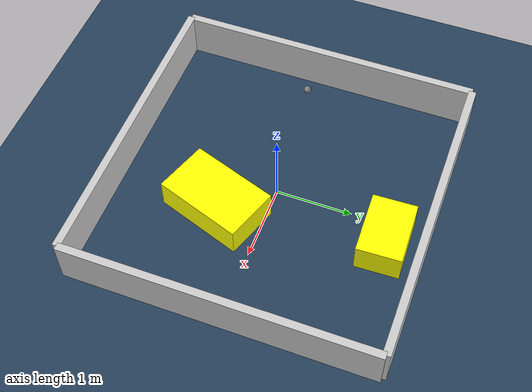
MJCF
<?xml version="1.0" ?>
<mujoco model="generated_environment">
  <option timestep="0.01" integrator="RK4" cone="elliptic"/>
  <default>
    <geom density="1"/>
  </default>
  <asset>
    <texture builtin="gradient" height="3072" rgb1="0.3 0.5 0.7" rgb2="0 0 0" type="skybox" width="512"/>
    <texture builtin="checker" height="300" mark="edge" markrgb="0.8 0.8 0.8" name="groundplane" rgb1="0.2 0.3 0.4" rgb2="0.1 0.2 0.3" type="2d" width="300"/>
    <material name="groundplane" reflectance="0.2" texrepeat="5 5" texture="groundplane" texuniform="true"/>
    <material name="robot" rgba="0.0 1.0 0.0 1"/>
  </asset>
  <worldbody>
    <light dir="0 0 -1" directional="true" pos="0 0 1.5"/>
    <geom condim="4" friction="1.0 0.005 0.001" material="groundplane" name="floor" size="0 0 0.05" type="plane"/>
    <body name="walls">
      <geom name="wall_1" condim="4" pos="-2.0 0.0 0.3" rgba="0.800000011920929 0.800000011920929 0.800000011920929 1.0" size="0.05 2.0 0.3" type="box"/>
      <geom name="wall_2" condim="4" pos="2.0 0.0 0.3" rgba="0.800000011920929 0.800000011920929 0.800000011920929 1.0" size="0.05 2.0 0.3" type="box"/>
      <geom name="wall_3" condim="4" pos="0.0 -2.0 0.3" rgba="0.800000011920929 0.800000011920929 0.800000011920929 1.0" size="2.0 0.05 0.3" type="box"/>
      <geom name="wall_4" condim="4" pos="0.0 2.0 0.3" rgba="0.800000011920929 0.800000011920929 0.800000011920929 1.0" size="2.0 0.05 0.3" type="box"/>
    </body>
    <body name="robot">
      <joint name="joint_x" type="slide" pos="0 0 0" axis="1 0 0"/>
      <joint name="joint_y" type="slide" pos="0 0 0" axis="0 1 0"/>
      <geom name="robot" type="sphere" pos="-1.6179441129013084 -0.14252311771506787 0.2" size="0.05" mass="5." friction="1.0 0.005 0.0001" condim="4"/>
      <site name="sensor_ball"/>
    </body>
    <body name="obstacle_1_movable">
      <geom name="obstacle_1_movable" condim="4" pos="0.49605119057515745 -0.6219392642415779 0.2" euler="0 0 341.2074839333557" friction="1.0 0.005 0.001" rgba="1 1 0 1" size="0.36399336559637346 0.588129494241271 0.2" type="box" mass="0.1"/>
      <joint type="free"/>
    </body>
    <body name="obstacle_2_movable">
      <geom name="obstacle_2_movable" condim="4" pos="0.28772124687646405 1.5266257068012694 0.2" euler="0 0 181.99090635108402" friction="1.0 0.005 0.001" rgba="1 1 0 1" size="0.41392583292106333 0.2871755093794491 0.2" type="box" mass="0.1"/>
      <joint type="free"/>
    </body>
  </worldbody>
  <actuator>
    <motor name="actuator_x" joint="joint_x" gear="1" ctrlrange="-1 1"/>
    <motor name="actuator_y" joint="joint_y" gear="1" ctrlrange="-1 1"/>
  </actuator>
</mujoco>
